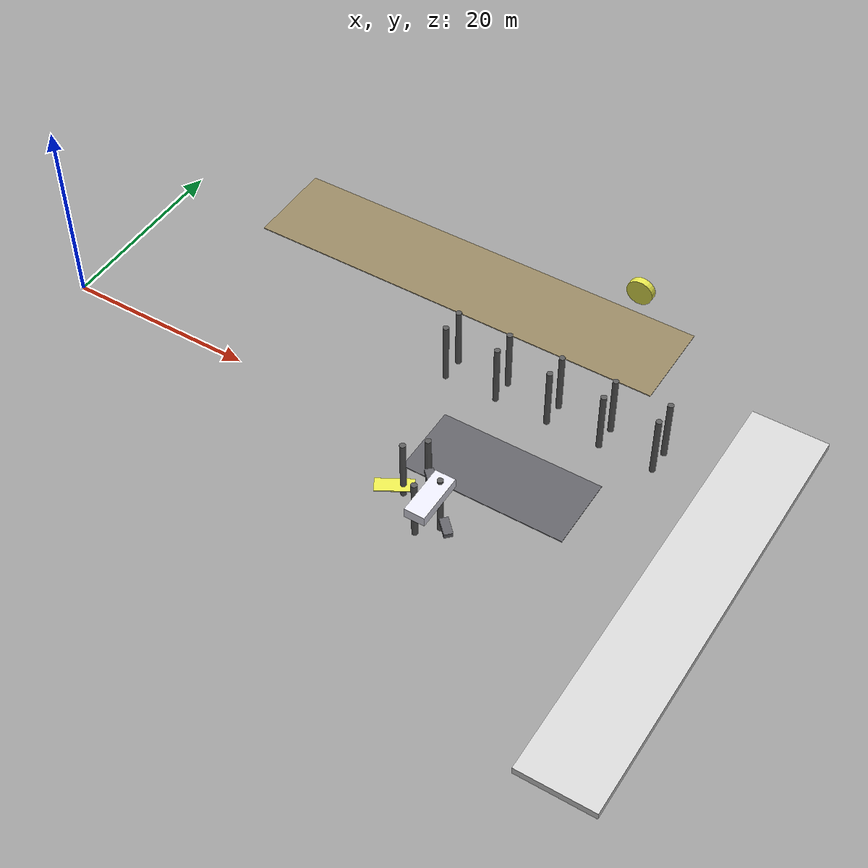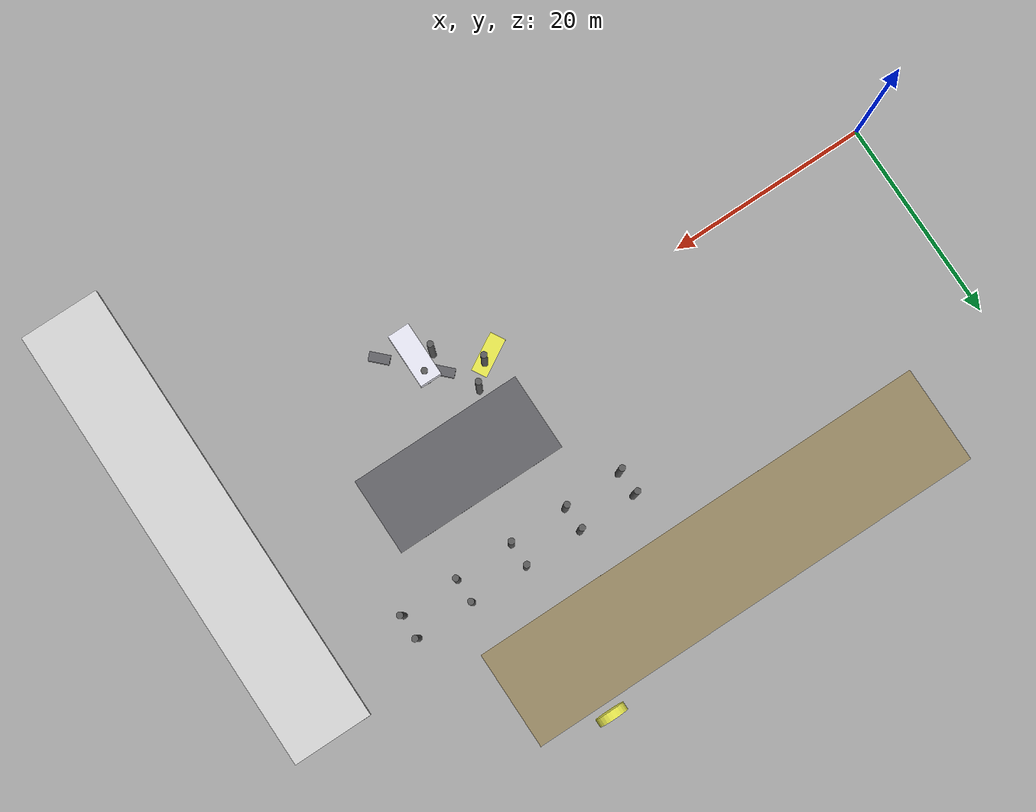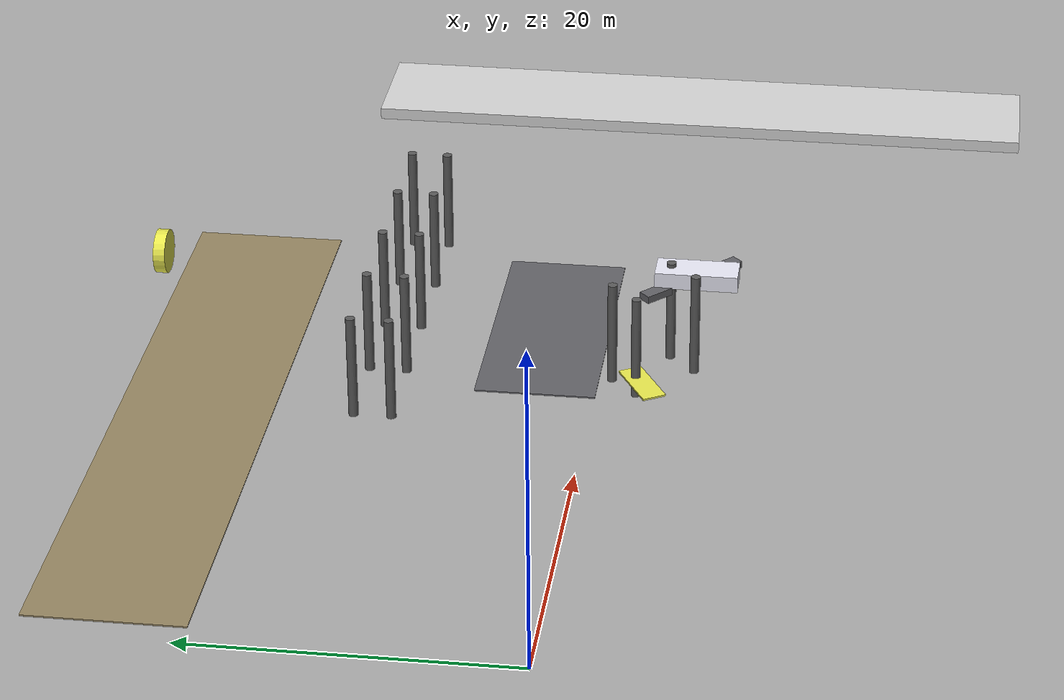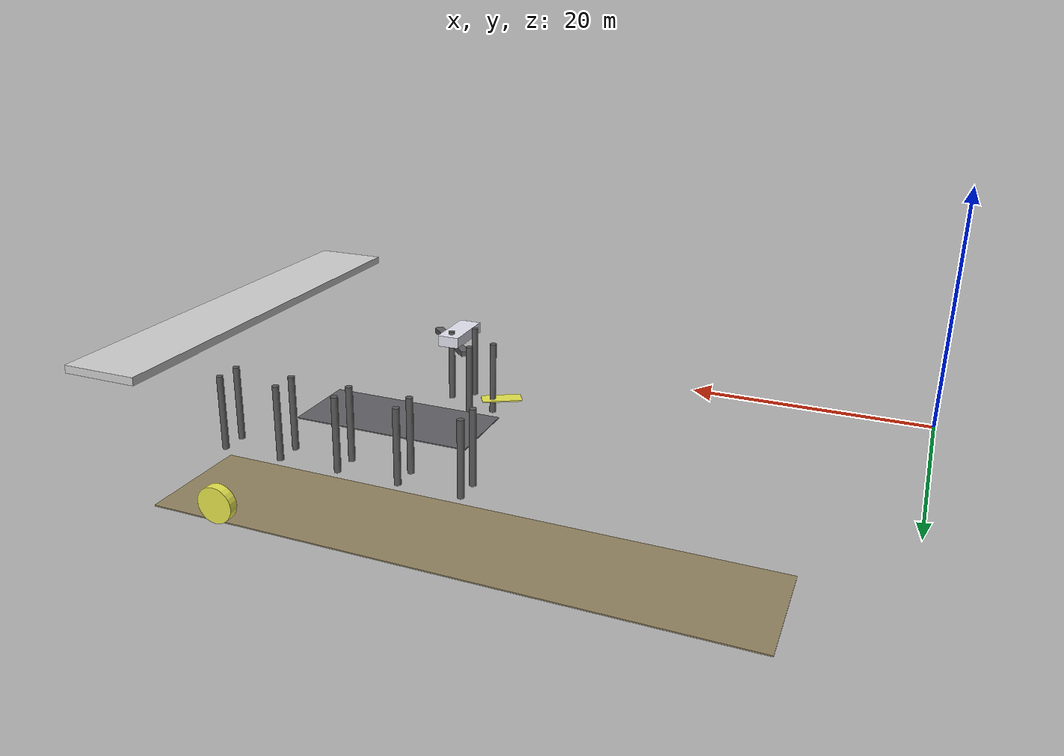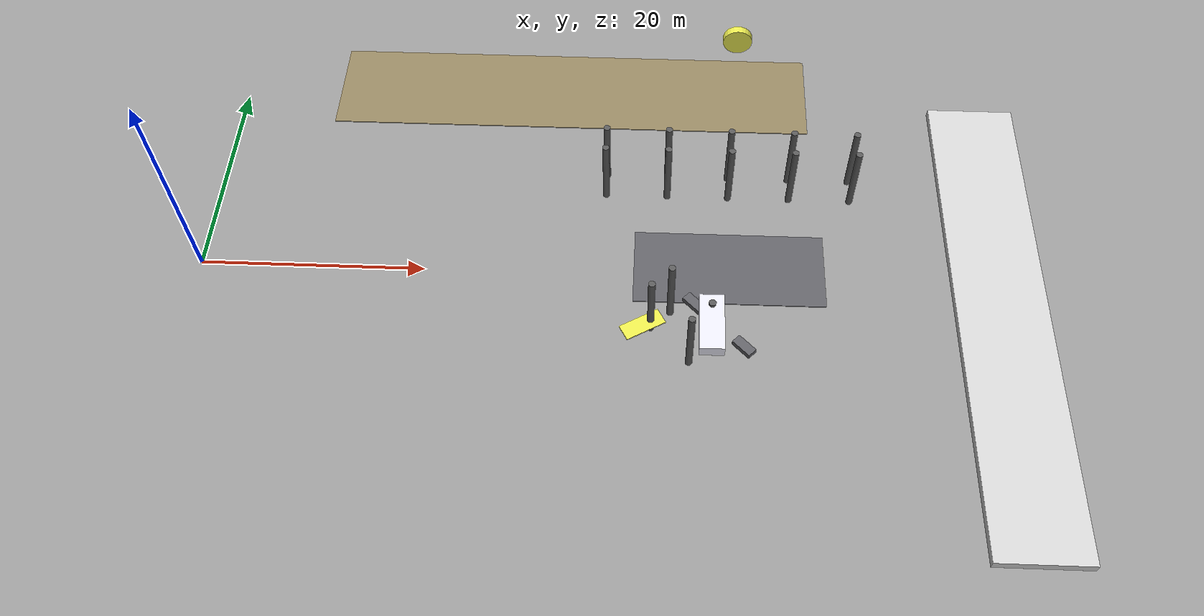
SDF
<sdf version="1.10">
 <world name="harbor">
  <model name="harbor_east_berth">
   <pose>70.500000 -3.000000 0.550000 0.000000 0.000000 0.000000</pose>
   <static>true</static>
   <link name="link">
    <collision name="collision">
     <geometry><box><size>8.000000 46.000000 0.800000</size></box></geometry>
    </collision>
    <visual name="visual">
     <geometry><box><size>8.000000 46.000000 0.800000</size></box></geometry>
     <material><ambient>0.72 0.72 0.72 1</ambient><diffuse>0.82 0.82 0.82 1</diffuse></material>
    </visual>
   </link>
  </model>
  <model name="diagonal_revetment_rock_00">
   <pose>44.000000 -2.400000 -0.550000 0.000000 0.000000 -0.785449</pose>
   <static>true</static>
   <link name="link">
    <collision name="collision">
     <geometry><box><size>2.000000 0.900000 0.500000</size></box></geometry>
    </collision>
    <visual name="visual">
     <geometry><box><size>2.000000 0.900000 0.500000</size></box></geometry>
     <material><ambient>0.28 0.28 0.3 1</ambient><diffuse>0.38 0.38 0.4 1</diffuse></material>
    </visual>
   </link>
  </model>
  <model name="diagonal_revetment_rock_01">
   <pose>48.300000 -6.700000 -0.550000 0.000000 0.000000 -0.785449</pose>
   <static>true</static>
   <link name="link">
    <collision name="collision">
     <geometry><box><size>2.000000 0.900000 0.500000</size></box></geometry>
    </collision>
    <visual name="visual">
     <geometry><box><size>2.000000 0.900000 0.500000</size></box></geometry>
     <material><ambient>0.28 0.28 0.3 1</ambient><diffuse>0.38 0.38 0.4 1</diffuse></material>
    </visual>
   </link>
  </model>
  <model name="north_wharf_pile_x12_water">
   <pose>35.500000 14.000000 -2.600000 0.000000 0.000000 0.000000</pose>
   <static>true</static>
   <link name="link">
    <collision name="collision">
     <geometry><cylinder><radius>0.320000</radius><length>7.200000</length></cylinder></geometry>
    </collision>
    <visual name="visual">
     <geometry><cylinder><radius>0.320000</radius><length>7.200000</length></cylinder></geometry>
     <material><ambient>0.25 0.25 0.25 1</ambient><diffuse>0.35 0.35 0.35 1</diffuse></material>
    </visual>
   </link>
  </model>
  <model name="north_wharf_pile_x12_apron">
   <pose>35.500000 16.500000 -2.600000 0.000000 0.000000 0.000000</pose>
   <static>true</static>
   <link name="link">
    <collision name="collision">
     <geometry><cylinder><radius>0.320000</radius><length>7.200000</length></cylinder></geometry>
    </collision>
    <visual name="visual">
     <geometry><cylinder><radius>0.320000</radius><length>7.200000</length></cylinder></geometry>
     <material><ambient>0.25 0.25 0.25 1</ambient><diffuse>0.35 0.35 0.35 1</diffuse></material>
    </visual>
   </link>
  </model>
  <model name="north_wharf_pile_x18_water">
   <pose>41.500000 14.000000 -2.600000 0.000000 0.000000 0.000000</pose>
   <static>true</static>
   <link name="link">
    <collision name="collision">
     <geometry><cylinder><radius>0.320000</radius><length>7.200000</length></cylinder></geometry>
    </collision>
    <visual name="visual">
     <geometry><cylinder><radius>0.320000</radius><length>7.200000</length></cylinder></geometry>
     <material><ambient>0.25 0.25 0.25 1</ambient><diffuse>0.35 0.35 0.35 1</diffuse></material>
    </visual>
   </link>
  </model>
  <model name="north_wharf_pile_x18_apron">
   <pose>41.500000 16.500000 -2.600000 0.000000 0.000000 0.000000</pose>
   <static>true</static>
   <link name="link">
    <collision name="collision">
     <geometry><cylinder><radius>0.320000</radius><length>7.200000</length></cylinder></geometry>
    </collision>
    <visual name="visual">
     <geometry><cylinder><radius>0.320000</radius><length>7.200000</length></cylinder></geometry>
     <material><ambient>0.25 0.25 0.25 1</ambient><diffuse>0.35 0.35 0.35 1</diffuse></material>
    </visual>
   </link>
  </model>
  <model name="north_wharf_pile_x24_water">
   <pose>47.500000 14.000000 -2.600000 0.000000 0.000000 0.000000</pose>
   <static>true</static>
   <link name="link">
    <collision name="collision">
     <geometry><cylinder><radius>0.320000</radius><length>7.200000</length></cylinder></geometry>
    </collision>
    <visual name="visual">
     <geometry><cylinder><radius>0.320000</radius><length>7.200000</length></cylinder></geometry>
     <material><ambient>0.25 0.25 0.25 1</ambient><diffuse>0.35 0.35 0.35 1</diffuse></material>
    </visual>
   </link>
  </model>
  <model name="north_wharf_pile_x24_apron">
   <pose>47.500000 16.500000 -2.600000 0.000000 0.000000 0.000000</pose>
   <static>true</static>
   <link name="link">
    <collision name="collision">
     <geometry><cylinder><radius>0.320000</radius><length>7.200000</length></cylinder></geometry>
    </collision>
    <visual name="visual">
     <geometry><cylinder><radius>0.320000</radius><length>7.200000</length></cylinder></geometry>
     <material><ambient>0.25 0.25 0.25 1</ambient><diffuse>0.35 0.35 0.35 1</diffuse></material>
    </visual>
   </link>
  </model>
  <model name="north_wharf_pile_x30_water">
   <pose>53.500000 14.000000 -2.600000 0.000000 0.000000 0.000000</pose>
   <static>true</static>
   <link name="link">
    <collision name="collision">
     <geometry><cylinder><radius>0.320000</radius><length>7.200000</length></cylinder></geometry>
    </collision>
    <visual name="visual">
     <geometry><cylinder><radius>0.320000</radius><length>7.200000</length></cylinder></geometry>
     <material><ambient>0.25 0.25 0.25 1</ambient><diffuse>0.35 0.35 0.35 1</diffuse></material>
    </visual>
   </link>
  </model>
  <model name="north_wharf_pile_x30_apron">
   <pose>53.500000 16.500000 -2.600000 0.000000 0.000000 0.000000</pose>
   <static>true</static>
   <link name="link">
    <collision name="collision">
     <geometry><cylinder><radius>0.320000</radius><length>7.200000</length></cylinder></geometry>
    </collision>
    <visual name="visual">
     <geometry><cylinder><radius>0.320000</radius><length>7.200000</length></cylinder></geometry>
     <material><ambient>0.25 0.25 0.25 1</ambient><diffuse>0.35 0.35 0.35 1</diffuse></material>
    </visual>
   </link>
  </model>
  <model name="north_wharf_pile_x36_water">
   <pose>59.500000 14.000000 -2.600000 0.000000 0.000000 0.000000</pose>
   <static>true</static>
   <link name="link">
    <collision name="collision">
     <geometry><cylinder><radius>0.320000</radius><length>7.200000</length></cylinder></geometry>
    </collision>
    <visual name="visual">
     <geometry><cylinder><radius>0.320000</radius><length>7.200000</length></cylinder></geometry>
     <material><ambient>0.25 0.25 0.25 1</ambient><diffuse>0.35 0.35 0.35 1</diffuse></material>
    </visual>
   </link>
  </model>
  <model name="north_wharf_pile_x36_apron">
   <pose>59.500000 16.500000 -2.600000 0.000000 0.000000 0.000000</pose>
   <static>true</static>
   <link name="link">
    <collision name="collision">
     <geometry><cylinder><radius>0.320000</radius><length>7.200000</length></cylinder></geometry>
    </collision>
    <visual name="visual">
     <geometry><cylinder><radius>0.320000</radius><length>7.200000</length></cylinder></geometry>
     <material><ambient>0.25 0.25 0.25 1</ambient><diffuse>0.35 0.35 0.35 1</diffuse></material>
    </visual>
   </link>
  </model>
  <model name="diagonal_pier_pile_00_inner">
   <pose>40.242000 -1.509000 -2.600000 0.000000 0.000000 0.000000</pose>
   <static>true</static>
   <link name="link">
    <collision name="collision">
     <geometry><cylinder><radius>0.320000</radius><length>7.200000</length></cylinder></geometry>
    </collision>
    <visual name="visual">
     <geometry><cylinder><radius>0.320000</radius><length>7.200000</length></cylinder></geometry>
     <material><ambient>0.25 0.25 0.25 1</ambient><diffuse>0.35 0.35 0.35 1</diffuse></material>
    </visual>
   </link>
  </model>
  <model name="diagonal_pier_pile_00_outer">
   <pose>42.010000 0.259000 -2.600000 0.000000 0.000000 0.000000</pose>
   <static>true</static>
   <link name="link">
    <collision name="collision">
     <geometry><cylinder><radius>0.320000</radius><length>7.200000</length></cylinder></geometry>
    </collision>
    <visual name="visual">
     <geometry><cylinder><radius>0.320000</radius><length>7.200000</length></cylinder></geometry>
     <material><ambient>0.25 0.25 0.25 1</ambient><diffuse>0.35 0.35 0.35 1</diffuse></material>
    </visual>
   </link>
  </model>
  <model name="diagonal_pier_pile_01_inner">
   <pose>43.778000 -5.045000 -2.600000 0.000000 0.000000 0.000000</pose>
   <static>true</static>
   <link name="link">
    <collision name="collision">
     <geometry><cylinder><radius>0.320000</radius><length>7.200000</length></cylinder></geometry>
    </collision>
    <visual name="visual">
     <geometry><cylinder><radius>0.320000</radius><length>7.200000</length></cylinder></geometry>
     <material><ambient>0.25 0.25 0.25 1</ambient><diffuse>0.35 0.35 0.35 1</diffuse></material>
    </visual>
   </link>
  </model>
  <model name="diagonal_pier_pile_01_outer">
   <pose>45.546000 -3.277000 -2.600000 0.000000 0.000000 0.000000</pose>
   <static>true</static>
   <link name="link">
    <collision name="collision">
     <geometry><cylinder><radius>0.320000</radius><length>7.200000</length></cylinder></geometry>
    </collision>
    <visual name="visual">
     <geometry><cylinder><radius>0.320000</radius><length>7.200000</length></cylinder></geometry>
     <material><ambient>0.25 0.25 0.25 1</ambient><diffuse>0.35 0.35 0.35 1</diffuse></material>
    </visual>
   </link>
  </model>
  <model name="service_boat_east">
   <pose>45.500000 -5.000000 0.180000 0.000000 0.000000 1.570777</pose>
   <static>true</static>
   <link name="link">
    <collision name="collision">
     <geometry><box><size>5.500000 2.200000 1.100000</size></box></geometry>
    </collision>
    <visual name="visual">
     <geometry><box><size>5.500000 2.200000 1.100000</size></box></geometry>
     <material><ambient>0.75 0.75 0.78 1</ambient><diffuse>0.9 0.9 0.95 1</diffuse></material>
    </visual>
   </link>
  </model>
  <model name="target_turbine_01">
   <pose>48.500000 32.000000 -2.000000 1.570777 0.000000 0.000000</pose>
   <static>true</static>
   <link name="link">
    <collision name="collision">
     <geometry><cylinder><radius>1.500000</radius><length>0.800000</length></cylinder></geometry>
    </collision>
    <visual name="visual">
     <geometry><cylinder><radius>1.500000</radius><length>0.800000</length></cylinder></geometry>
     <material><ambient>0.7 0.7 0.2 1</ambient><diffuse>0.9 0.9 0.3 1</diffuse></material>
    </visual>
   </link>
  </model>
  <model name="metal_plate_wreckage_01">
   <pose>39.500000 -2.000000 -4.850000 0.000000 0.000000 0.523545</pose>
   <static>true</static>
   <link name="link">
    <collision name="collision">
     <geometry><box><size>4.000000 1.600000 0.120000</size></box></geometry>
    </collision>
    <visual name="visual">
     <geometry><box><size>4.000000 1.600000 0.120000</size></box></geometry>
     <material><ambient>0.7 0.7 0.2 1</ambient><diffuse>0.9 0.9 0.3 1</diffuse></material>
    </visual>
   </link>
  </model>
  <model name="sand_shelf_north">
   <pose>31.500000 26.000000 -4.200000 0.000000 0.000000 0.000000</pose>
   <static>true</static>
   <link name="link">
    <collision name="collision">
     <geometry><box><size>48.000000 10.000000 0.100000</size></box></geometry>
    </collision>
    <visual name="visual">
     <geometry><box><size>48.000000 10.000000 0.100000</size></box></geometry>
     <material><ambient>0.45 0.4 0.3 1</ambient><diffuse>0.58 0.52 0.38 1</diffuse></material>
    </visual>
   </link>
  </model>
  <model name="pier_scour_patch_01">
   <pose>47.500000 5.000000 -5.600000 0.000000 0.000000 0.000000</pose>
   <static>true</static>
   <link name="link">
    <collision name="collision">
     <geometry><box><size>18.000000 8.000000 0.100000</size></box></geometry>
    </collision>
    <visual name="visual">
     <geometry><box><size>18.000000 8.000000 0.100000</size></box></geometry>
     <material><ambient>0.28 0.28 0.3 1</ambient><diffuse>0.38 0.38 0.4 1</diffuse></material>
    </visual>
   </link>
  </model>
 </world>
</sdf>
